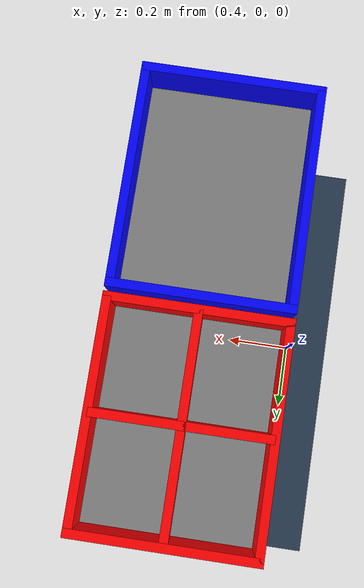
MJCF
<mujoco model="empty_arena">
  <asset>
    <texture name="texplane" type="2d" builtin="checker" rgb1=".2 .3 .4" rgb2=".1 0.15 0.2"
                width="512" height="512"/>
    <material name="MatGnd" reflectance="0.5" texture="texplane" texrepeat="1 1" texuniform="true"/>
    <texture type="skybox" builtin="gradient" rgb1="1 1 1" rgb2=".6 .8 1" width="256" height="256"/>

    <!-- steel legs -->
    <texture file="../textures/steel-brushed.png" type="cube" name="tex-steel-brushed"/>
    <material name="table_legs_metal" reflectance="0.8" shininess="0.8" texrepeat="1 1" texture="tex-steel-brushed" />

    <!-- bins -->
    <texture file="../textures/light-wood.png" type="2d" name="tex-light-wood"/>
    <texture file="../textures/dark-wood.png" type="2d" name="tex-dark-wood"/>
    <material name="light-wood" reflectance="0" texrepeat="15 15" texture="tex-light-wood" texuniform="true"/>
    <material name="dark-wood" reflectance="0" texrepeat="5 5" texture="tex-dark-wood" texuniform="true"/>
  </asset>

  <worldbody>
    <light directional="false" diffuse=".8 .8 .8" specular="0.3 0.3 0.3" pos="1  1 3" dir="-1 -1 -3"/>
    <geom name="ground" pos="0 0 0" size="5 5 10" material="MatGnd" type="plane" contype="1" conaffinity="1"/>
    <!-- bins -->
    <body name="bin1" pos="0.7 -0.25 0.8">
      <geom pos="0 0 0" size="0.2 0.25 0.02" type="box" group="0" friction="1 0.005 0.0001"/>
      <geom pos="0 0 0" material="light-wood" size="0.2 0.25 0.02" type="box" conaffinity="0" contype="0" group="1"/>
        <geom pos="0 0.25 0.05" size="0.21 0.01 0.05" type="box" group="0" friction="1 0.005 0.0001" rgba="0 0 1 1"/>
        <geom pos="0 0.25 0.05" size="0.21 0.01 0.05" type="box" conaffinity="0" contype="0" group="1" material="light-wood"/>
        <geom pos="0 -0.25 0.05" size="0.21 0.01 0.05" type="box" group="0" friction="1 0.005 0.0001" rgba="0 0 1 1"/>
        <geom pos="0 -0.25 0.05" size="0.21 0.01 0.05" type="box" conaffinity="0" contype="0" group="1" material="light-wood"/>
        <geom pos="0.2 0 0.05" size="0.01 0.25 0.05" type="box" group="0" friction="1 0.005 0.0001" rgba="0 0 1 1"/>
        <geom pos="0.2 0 0.05" size="0.01 0.25 0.05" type="box" conaffinity="0" contype="0" group="1" material="light-wood"/>
        <geom pos="-0.2 0 0.05" size="0.01 0.25 0.05" type="box" group="0" friction="1 0.005 0.0001" rgba="0 0 1 1"/>
        <geom pos="-0.2 0 0.05" size="0.01 0.25 0.05" type="box" conaffinity="0" contype="0" group="1" material="light-wood"/>
        <!-- Legs (visual only) -->
        <geom pos="0.15 0.2 -0.4" size="0.01 0.4" type="cylinder" conaffinity="0" contype="0" group="1" name="bin1_leg1_visual" material="table_legs_metal"/>
        <geom pos="-0.15 0.2 -0.4" size="0.01 0.4" type="cylinder" conaffinity="0" contype="0" group="1" name="bin1_leg2_visual" material="table_legs_metal"/>
        <geom pos="-0.15 -0.2 -0.4" size="0.01 0.4" type="cylinder" conaffinity="0" contype="0" group="1" name="bin1_leg3_visual" material="table_legs_metal"/>
        <geom pos="0.15 -0.2 -0.4" size="0.01 0.4" type="cylinder" conaffinity="0" contype="0" group="1" name="bin1_leg4_visual" material="table_legs_metal"/>
    </body>
    <body name="bin2" pos="0.7 0.28 0.8">
      <geom pos="0 0 0" size="0.2 0.25 0.02" type="box" group="0" friction="1 0.005 0.0001"/>
      <geom pos="0 0 0" size="0.2 0.25 0.02" type="box" conaffinity="0" contype="0" group="1" material="dark-wood"/>
        <geom pos="0 0.25 0.05" size="0.21 0.01 0.05" type="box" group="0" friction="1 0.005 0.0001" rgba="1 0 0 1"/>
        <geom pos="0 0.25 0.05" size="0.21 0.01 0.05" type="box" conaffinity="0" contype="0" group="1" material="dark-wood"/>
        <geom pos="0 0 0.05" size="0.2 0.01 0.05" type="box" group="0" friction="1 0.005 0.0001" rgba="1 0 0 1"/>
        <geom pos="0 0 0.05" size="0.2 0.01 0.05" type="box" conaffinity="0" contype="0" group="1" material="dark-wood"/>
        <geom pos="0 -0.25 0.05" size="0.21 0.01 0.05" type="box" group="0" friction="1 0.005 0.0001" rgba="1 0 0 1"/>
        <geom pos="0 -0.25 0.05" size="0.21 0.01 0.05" type="box" conaffinity="0" contype="0" group="1" material="dark-wood"/>
        <geom pos="0.2 0 0.05" size="0.01 0.25 0.05" type="box" group="0" friction="1 0.005 0.0001" rgba="1 0 0 1"/>
        <geom pos="0.2 0 0.05" size="0.01 0.25 0.05" type="box" conaffinity="0" contype="0" group="1" material="dark-wood"/>
        <geom pos="0 0 0.05" size="0.01 0.25 0.05" type="box" group="0" friction="1 0.005 0.0001" rgba="1 0 0 1"/>
        <geom pos="0 0 0.05" size="0.01 0.25 0.05" type="box" conaffinity="0" contype="0" group="1" material="dark-wood"/>
        <geom pos="-0.2 0 0.05" size="0.01 0.25 0.05" type="box" group="0" friction="1 0.005 0.0001" rgba="1 0 0 1"/>
        <geom pos="-0.2 0 0.05" size="0.01 0.25 0.05" type="box" conaffinity="0" contype="0" group="1" material="dark-wood"/>
        <!-- Legs (visual only) -->
        <geom pos="0.15 0.2 -0.4" size="0.01 0.4" type="cylinder" conaffinity="0" contype="0" group="1" name="bin2_leg1_visual" material="table_legs_metal"/>
        <geom pos="-0.15 0.2 -0.4" size="0.01 0.4" type="cylinder" conaffinity="0" contype="0" group="1" name="bin2_leg2_visual" material="table_legs_metal"/>
        <geom pos="-0.15 -0.2 -0.4" size="0.01 0.4" type="cylinder" conaffinity="0" contype="0" group="1" name="bin2_leg3_visual" material="table_legs_metal"/>
        <geom pos="0.15 -0.2 -0.4" size="0.01 0.4" type="cylinder" conaffinity="0" contype="0" group="1" name="bin2_leg4_visual" material="table_legs_metal"/>
    </body>

    <light diffuse=".8 .8 .8" dir="0 -.15 -1" directional="false" pos="1 1 4.0" specular="0.3 0.3 0.3" castshadow="false"/>
    <light diffuse=".8 .8 .8" dir="0 -.15 -1" directional="false" pos="-3. -3. 4.0" specular="0.3 0.3 0.3" castshadow="false"/>
    <!-- front view -->
    <camera mode="fixed" name="frontview" pos="1.6 0 1.45" quat="0.56 0.43 0.43 0.56"/>
    <!-- bird view -->
    <camera mode="fixed" name="birdview" pos="-0.2 0 3.0" quat="0.7071 0 0 0.7071"/>
    <!-- agent view -->
    <camera mode="fixed" name="agentview" pos="1.0 0 1.75" quat="0.653 0.271 0.271 0.653"/>
  </worldbody>
</mujoco>
